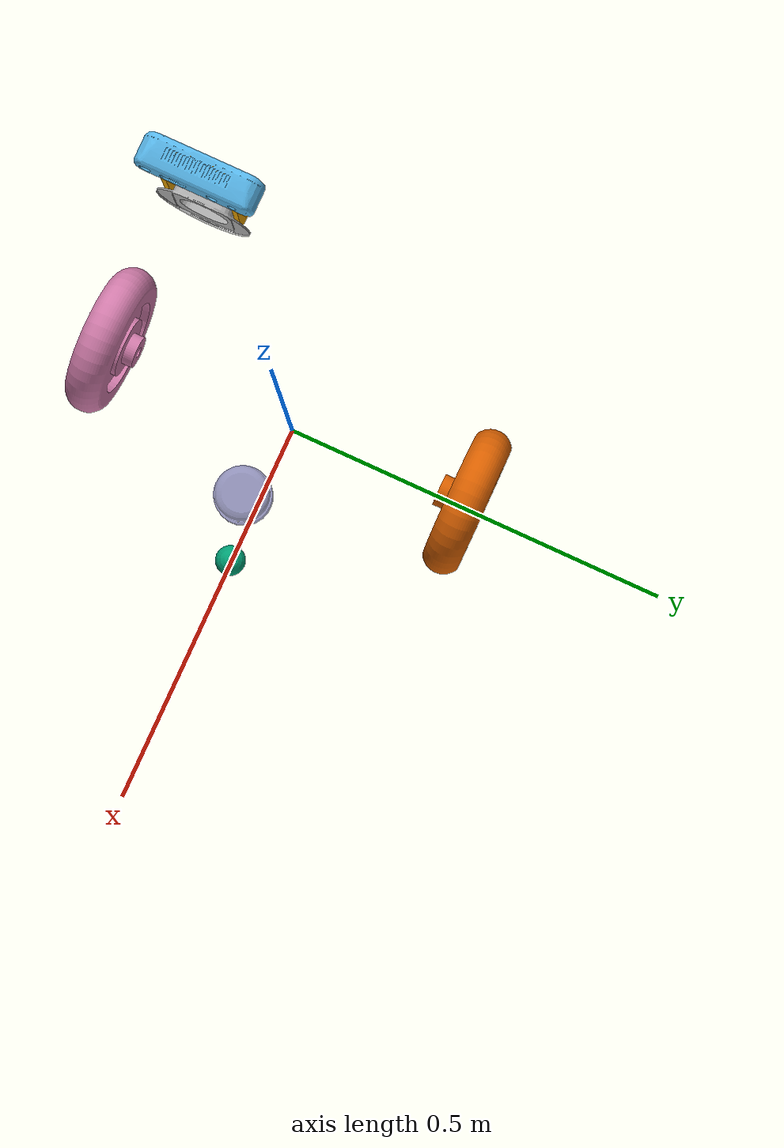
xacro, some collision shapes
<?xml version="1.0"?>
<robot xmlns:controller="http://playerstage.sourceforge.net/gazebo/xmlschema/#controller"
  xmlns:interface="http://playerstage.sourceforge.net/gazebo/xmlschema/#interface"
  xmlns:sensor="http://playerstage.sourceforge.net/gazebo/xmlschema/#sensor"
  xmlns:xacro="http://ros.org/wiki/xacro"
  name="sick_tim">

  <xacro:include filename="$(find robot_simulation)/urdf/sick_tim.urdf.xacro" />

  <!-- Choose your laser -->
  <xacro:rplidarA2 name="laser" ros_topic="scan"   />

  <xacro:include filename="$(find robot_simulation)/urdf/materials.xacro" />
  <xacro:include filename="$(find robot_simulation)/urdf/xbot-u.urdf.xacro" />
  <xacro:xbot2_base/>

</robot>

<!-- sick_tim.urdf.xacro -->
<robot xmlns:controller="http://playerstage.sourceforge.net/gazebo/xmlschema/#controller"
  xmlns:interface="http://playerstage.sourceforge.net/gazebo/xmlschema/#interface"
  xmlns:sensor="http://playerstage.sourceforge.net/gazebo/xmlschema/#sensor"
  xmlns:xacro="http://ros.org/wiki/xacro">

  <xacro:macro name="rplidarA2" params="name ros_topic">
    <xacro:sick_tim name="${name}" ros_topic="${ros_topic}"
      length="0.06" width="0.06" height="0.079" mass="0.150" z_offset="0.05595"
      min_range="0.2" max_range="8.0"
      mesh="file://$(find robot_simulation)/models/meshes/rplidar.obj" />
  </xacro:macro>

  <xacro:macro name="sick_tim310" params="name ros_topic">
    <xacro:sick_tim name="${name}" ros_topic="${ros_topic}"
      length="0.06" width="0.06" height="0.079" mass="0.150" z_offset="0.05595"
      min_range="0.05" max_range="4.0"
      mesh="file://$(find robot_simulation)/models/meshes/sick_tim310.stl" />
  </xacro:macro>

  <xacro:macro name="sick_tim551" params="name ros_topic">
    <xacro:sick_tim name="${name}" ros_topic="${ros_topic}"
      length="0.06" width="0.06" height="0.086" mass="0.250" z_offset="0.06296"
      min_range="0.05" max_range="10.0"
      mesh="file://$(find robot_simulation)/models/meshes/sick_tim551.stl" />
  </xacro:macro>

  <xacro:macro name="sick_tim571" params="name ros_topic">
    <xacro:sick_tim name="${name}" ros_topic="${ros_topic}"
      length="0.06" width="0.06" height="0.086" mass="0.250" z_offset="0.02"
      min_range="0.05" max_range="25.0"
      mesh="file://$(find robot_simulation)/models/meshes/sick_tim571.stl" />
  </xacro:macro>

  <xacro:macro name="sick_tim" params="name ros_topic length width height mass z_offset min_range max_range mesh">
    <!-- z_offset: distance between base plate and laser center (= center of mesh) -->

    <joint name="${name}_joint" type="fixed">
      <parent link="${name}_mount_link" />
      <child link="${name}" />
      <origin rpy="0 0 0" xyz="0 0 ${z_offset}"/>
    </joint>

    <link name="${name}">
      <visual>
        <geometry>
          <mesh filename="${mesh}" />
        </geometry>
        <material name="lightblue">
          <color rgba=".5 .5 .7 .8" />
        </material>
      </visual>
      <collision>
        <geometry>
          <mesh filename="${mesh}" />
        </geometry>
      </collision>
      <inertial>
        <mass value="${mass}" />
        <origin xyz="0 0 -0.026" />
        <inertia ixx="${0.0833333 * mass * (width * width + height * height)}" ixy="0.0" ixz="0.0"
          iyy="${0.0833333 * mass * (length * length + height * height)}" iyz="0.0"
          izz="${0.0833333 * mass * (length * length + width * width)}" />
      </inertial>
    </link>
      <xacro:sick_tim_laser_gazebo_v0 name="${name}" link="${name}" ros_topic="${ros_topic}"
      update_rate="15.0" min_angle="-2.357" max_angle="2.357" min_range="${min_range}" max_range="${max_range}"/>
      <!--update_rate=15.0-->
  </xacro:macro>

  <xacro:macro name="sick_tim_laser_gazebo_v0" params="name link ros_topic update_rate min_angle max_angle min_range max_range">
    <gazebo reference="${link}">
      <sensor type="gpu_lidar" name="${name}">
        <pose>0 0 0 0 0 0</pose>
        <visualize>true</visualize>
        <update_rate>20.0</update_rate>
        <topic>${ros_topic}</topic>
        <gz_frame_id>${link}</gz_frame_id>
        <always_on>true</always_on>
        <lidar>
          <scan>
            <horizontal>
              <samples>810</samples>
              <resolution>1.000000</resolution>
              <min_angle>-1.570796</min_angle>
              <max_angle>1.570796</max_angle>
            </horizontal>
          </scan>
          <range>
            <min>0.10</min>
            <max>10.0</max>
            <resolution>0.01</resolution>
          </range>
          <noise>
            <type>gaussian</type>
            <mean>0.0</mean>
            <stddev>0.01</stddev>
          </noise>
        </lidar>
      </sensor>
    </gazebo>
  </xacro:macro>
</robot>

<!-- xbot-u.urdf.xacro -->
<robot xmlns:controller="http://playerstage.sourceforge.net/gazebo/xmlschema/#controller"
  xmlns:interface="http://playerstage.sourceforge.net/gazebo/xmlschema/#interface"
  xmlns:sensor="http://playerstage.sourceforge.net/gazebo/xmlschema/#sensor"
  xmlns:xacro="http://ros.org/wiki/xacro">

  <xacro:macro name="xbot2_base">
  <link name="base_footprint"/>
  <joint name="base_footprint_to_base" type="fixed">
    <axis rpy="0 0 0" xyz="0 0 0"/>
    <parent link="base_footprint"/>
    <child link="base_link"/>
    <origin rpy="0 0 0" xyz="0 0 0"/>
  </joint>

  <link name="base_link">
    <inertial>
      <origin rpy="0 0 0" xyz="-0.015 0.0 0.0014" />
      <mass value="35" />
      <inertia ixx="0.6125" ixy="0.00495" ixz="0.0031" iyy="0.6426" iyz="-0.0017" izz="0.494" />
    </inertial>
    <visual>
      <origin xyz="0 0 0" rpy="0 0 0" />
      <geometry>
        <mesh filename="file://$(find robot_simulation)/models/meshes/base_link.obj" />
      </geometry>
    </visual>

    <collision name="front_omniwheel">
      <origin xyz="0.18 0 0.02" rpy="0 0 0" />
      <geometry>
        <sphere radius="0.019"/>
      </geometry>
    </collision>
    <collision name="back_omniwheel">
      <origin xyz="-0.18 0 0.02" rpy="0 0 0" />
      <geometry>
        <sphere radius="0.019"/>
      </geometry>
    </collision>
    <collision name="collision1">
      <origin xyz="0.0 0 0.135" rpy="0 0 0" />
      <geometry>
        <cylinder length="0.15" radius="0.25"/>
      </geometry>
    </collision>
    <collision name="collision2">
      <origin xyz="0.03 0 0.25" rpy="0 0 0" />
      <geometry>
        <cylinder length="0.08" radius="0.045"/>
      </geometry>
    </collision>
    <collision name="collision3">
      <origin xyz="0 0 0.68" rpy="0 0 0" />
      <geometry>
        <cylinder length="0.8" radius="0.08"/>
      </geometry>
    </collision>
    <collision name="collision4">
      <origin xyz="0 0 1.135" rpy="0 0 0" />
      <geometry>
        <box size="0.04 0.17 0.09"/>
      </geometry>
    </collision>
  </link>

  <link name="laser_mount_link"/>
  <joint name="base_to_laser" type="fixed">
    <axis rpy="0 0 0" xyz="0 0 0"/>
    <parent link="base_link"/>
    <child link="laser_mount_link"/>
    <origin rpy="0 0 0" xyz=".114 0 .17"/>
  </joint>

  <link name="imu_link"/>

  <joint name="base_to_imu" type="fixed">
    <axis rpy="0 0 0" xyz="0 0 0"/>
    <parent link="base_link"/>
    <child link="imu_link"/>
    <origin rpy="0 0 0" xyz="0 0 .2"/>
  </joint>

  <link name="left_wheel">
    <collision name="collision">
      <origin xyz="0 0 0" rpy="1.57079632 0 0"/>
      <geometry>
        <cylinder radius="0.095" length="0.05"/>
      </geometry>
    </collision>
    <visual name="left_wheel_visual">
      <origin xyz="0 0 0" rpy="0 0 -1.57079632"/>
      <geometry>
        <mesh filename="file://$(find robot_simulation)/models/meshes/wheel.obj" />
      </geometry>
    </visual>
    <inertial>
      <origin rpy="0 0 0" xyz="0 0 0" />
      <mass value="4.3542" />
      <inertia ixx="0.0045" ixy="0" ixz="0" iyy="0.005" iyz="0" izz="0.0045" />
    </inertial>
  </link>

  <joint type="continuous" name="left_wheel_hinge">
    <axis xyz="0 1 0" rpy="0 0 0"/>
    <origin xyz="0 0.23 .095" rpy="0 0 0"/>
    <parent link="base_link"/>
    <child link="left_wheel"/>
    <limit effort="6" velocity="5.0"/>
    <joint_properties damping="0.0" friction="0.0"/>
  </joint>

  <link name="right_wheel">
    <collision name="collision">
      <origin xyz="0 0 0" rpy="-1.57079632  0 0"/>
      <geometry>
        <cylinder radius="0.095" length="0.05"/>
      </geometry>
    </collision>
    <visual name="right_wheel_visual">
      <origin xyz="0 0 0" rpy="0 0 1.57079632"/>
      <geometry>
        <mesh filename="file://$(find robot_simulation)/models/meshes/wheel.obj" />
      </geometry>
    </visual>
    <inertial>
      <origin rpy="0 0 0" xyz="0 0 0" />
      <mass value="4.3542" />
      <inertia ixx="0.0045" ixy="0" ixz="0" iyy="0.005" iyz="0" izz="0.0045" />
    </inertial>
  </link>

  <joint type="continuous" name="right_wheel_hinge">
    <axis xyz="0 1 0" rpy="0 0 0"/>
    <origin xyz="0 -0.23 .095" rpy="0 0 0"/>
    <parent link="base_link"/>
    <child link="right_wheel"/>
    <limit effort="6" velocity="5.0"/>
    <joint_properties damping="0.0" friction="0.0"/>
  </joint>

  <link name="yaw_platform">
    <inertial>
      <mass value="1e-5" />
      <origin xyz="0 0 0" rpy="0 0 0"/>
      <inertia ixx="1e-6" ixy="0" ixz="0" iyy="1e-6" iyz="0" izz="1e-6" />
    </inertial>
    <visual>
      <origin xyz="0 0 0" rpy="0 0 1.57079632" />
      <geometry>
        <mesh filename="file://$(find robot_simulation)/models/meshes/yaw_platform.obj" />
      </geometry>
    </visual>
    <collision>
      <origin xyz="0 0 0" rpy="0 0 1.57079632" />
      <geometry>
        <box size="0.1 0.1 0.1"/>
      </geometry>
    </collision>
  </link>

  <joint name="base_to_yaw_platform" type="revolute">
    <axis xyz="0 0 1"/>
    <parent link="base_link"/>
    <child link="yaw_platform"/>
    <origin rpy="0 0 0" xyz="0 0 1.305"/>
    <limit effort="100" velocity="100" lower="-1.57" upper="1.57" />
    <dynamics damping="0.0" friction="10.0"/>
  </joint>

  <link name="pitch_platform">
    <inertial>
      <mass value="1e-5" />
      <origin xyz="0 0 0" rpy="0 0 0"/>
      <inertia ixx="1e-6" ixy="0" ixz="0" iyy="1e-6" iyz="0" izz="1e-6" />
    </inertial>
    <visual>
      <origin xyz="0 0 0" rpy="0 0 0" />
      <geometry>
        <mesh filename="file://$(find robot_simulation)/models/meshes/pitch_platform.obj" />
      </geometry>
    </visual>
    <collision>
      <origin xyz="0 0 0" rpy="0 0 0" />
      <geometry>
        <box size="0.1 0.1 0.1"/>
      </geometry>
    </collision>
  </link>

  <joint name="yaw_to_pitch_platform" type="revolute">
    <axis xyz="0 1 0"/>
    <parent link="yaw_platform"/>
    <child link="pitch_platform"/>
    <origin rpy="0 0 0" xyz="0 0 0"/>
    <limit effort="100" velocity="100" lower="-1.57" upper="1.57" />
    <dynamics damping="0.0" friction="10.0"/>
  </joint>

  <!-- Camera -->
  <link name="camera_link">
    <collision>
      <origin xyz="0 0 0" rpy="0 0 0"/>
      <geometry>
        <box size="0.1 0.1 0.1"/>
      </geometry>
    </collision>
    <visual>
      <origin xyz="0 0 0" rpy="0 0 0"/>
      <geometry>
        <mesh filename="file://$(find robot_simulation)/models/meshes/realsense.obj" />
      </geometry>
    </visual>
    <inertial>
      <mass value="1e-5" />
      <origin xyz="0 0 0" rpy="0 0 0"/>
      <inertia ixx="1e-6" ixy="0" ixz="0" iyy="1e-6" iyz="0" izz="1e-6" />
    </inertial>
  </link>

  <joint name="camera_joint" type="fixed">
    <axis xyz="0 1 0" />
    <origin xyz="-0.005 0 .06" rpy="0 0 0"/>
    <parent link="pitch_platform"/>
    <child link="camera_link"/>
  </joint>

  <!-- generate an optical frame http://www.ros.org/reps/rep-0103.html#suffix-frames
      so that ros and opencv can operate on the camera frame correctly -->
  <joint name="camera_optical_joint" type="fixed">
    <!-- these values have to be these values otherwise the gazebo camera image
        won't be aligned properly with the frame it is supposedly originating from -->
    <origin xyz="0 0 0" rpy="-1.5708 0 -1.5708"/>
    <parent link="camera_link"/>
    <child link="camera_link_optical"/>
  </joint>

  <link name="camera_link_optical">
  </link>

  <transmission name="tran1">
    <type>transmission_interface/SimpleTransmission</type>
    <joint name="base_to_yaw_platform">
      <hardwareInterface>EffortJointInterface</hardwareInterface>
    </joint>
    <actuator name="yaw_motor">
      <hardwareInterface>EffortJointInterface</hardwareInterface>
      <mechanicalReduction>1</mechanicalReduction>
    </actuator>
  </transmission>

  <transmission name="tran2">
    <type>transmission_interface/SimpleTransmission</type>
    <joint name="yaw_to_pitch_platform">
      <hardwareInterface>EffortJointInterface</hardwareInterface>
    </joint>
    <actuator name="pitch_motor">
      <hardwareInterface>EffortJointInterface</hardwareInterface>
      <mechanicalReduction>1</mechanicalReduction>
    </actuator>
  </transmission>

   <ros2_control name="GazeboSimSystem" type="system">
    <hardware>
      <plugin>gz_ros2_control/GazeboSimSystem</plugin>
    </hardware>
    <joint name="base_to_yaw_platform">
      <command_interface name="effort"/>
      <state_interface name="effort"/>
    </joint>
    <joint name="yaw_to_pitch_platform">
      <command_interface name="effort"/>
      <state_interface name="effort"/>
    </joint>
  </ros2_control>

  <gazebo>
    <plugin filename="libgz_ros2_control-system" name="gz_ros2_control::GazeboSimROS2ControlPlugin">
      <parameters>$(find robot_simulation)/param/xbot-u_control.yaml</parameters>
      <robot_param>robot_description</robot_param>
      <robot_param_node>robot_state_publisher</robot_param_node>
      <controller_manager_prefix_node_name>controller_manager</controller_manager_prefix_node_name>
    </plugin>
  </gazebo>

  <gazebo reference="imu_link">
    <sensor name="imu_sensor" type="imu">
      <always_on>true</always_on>
      <update_rate>100</update_rate>
      <visualize>true</visualize>
      <topic>imu</topic>
      <imu>
        <angular_velocity>
            <x>
              <noise type="gaussian">
                <mean>0.0</mean>
                <stddev>2e-4</stddev>
              </noise>
            </x>
            <y>
              <noise type="gaussian">
                <mean>0.0</mean>
                <stddev>2e-4</stddev>
              </noise>
            </y>
            <z>
              <noise type="gaussian">
                <mean>0.0</mean>
                <stddev>2e-4</stddev>
              </noise>
            </z>
          </angular_velocity>
          <linear_acceleration>
            <x>
              <noise type="gaussian">
                <mean>0.0</mean>
                <stddev>1.7e-2</stddev>
              </noise>
            </x>
            <y>
              <noise type="gaussian">
                <mean>0.0</mean>
                <stddev>1.7e-2</stddev>
              </noise>
            </y>
            <z>
              <noise type="gaussian">
                <mean>0.0</mean>
                <stddev>1.7e-2</stddev>
              </noise>
            </z>
          </linear_acceleration>
      </imu>
    </sensor>
  </gazebo>

  <gazebo reference="camera_link">
    <sensor type="rgbd_camera" name="camera_D415_point">
      <updateRate>30.0</updateRate>
      <alwaysOn>true</alwaysOn>
      <visualize>true</visualize>
      <topic>camera/depth</topic>
      <gz_frame_id>camera_link</gz_frame_id>
      <camera name="head">
        <horizontal_fov>1.05</horizontal_fov>
        <image>
          <width>1280</width>
          <height>720</height>
          <format>R8G8B8</format>
        </image>
        <clip>
          <near>0.1</near>
          <far>10.0</far>
        </clip>
        <noise>
          <type>gaussian</type>
          <mean>0.0</mean>
          <stddev>0.005</stddev>
        </noise>
        <baseline>0.1</baseline>
        <distortion_k1>0.0</distortion_k1>
        <distortion_k2>0.0</distortion_k2>
        <distortion_k3>0.0</distortion_k3>
        <distortion_t1>0.0</distortion_t1>
        <distortion_t2>0.0</distortion_t2>
        <pointCloudCutoff>0.05</pointCloudCutoff>
        <rangeMax>4.0</rangeMax>
      </camera>
    </sensor>
  </gazebo>

  <gazebo>
    <plugin filename="gz-sim-diff-drive-system" name="gz::sim::systems::DiffDrive">
        <odom_topic>odom</odom_topic>
        <frame_id>odom</frame_id>
        <topic>cmd_vel</topic>
        <alwaysOn>true</alwaysOn>
        <odom_publisher_frequency>20</odom_publisher_frequency>
        <left_joint>left_wheel_hinge</left_joint>
        <right_joint>right_wheel_hinge</right_joint>
        <wheel_separation>0.46</wheel_separation>
        <wheel_radius>0.19</wheel_radius>
        <tf_topic>/tf_diff</tf_topic>
        <child_frame_id>base_footprint</child_frame_id>
    </plugin>
  </gazebo>

  <gazebo reference="base_link">
    <mu>0</mu>
    <mu2>0</mu2>
    <kp>100000000.0</kp>
    <kd>10000.0</kd>
  </gazebo>

  <gazebo reference="laser">
  </gazebo>

  <gazebo reference="right_wheel">
    <mu>10</mu>
    <mu2>10</mu2>
    <kp>100.0</kp>
    <kd>10.0</kd>
  </gazebo>

  <gazebo reference="left_wheel">
    <mu>10</mu>
    <mu2>10</mu2>
    <kp>100.0</kp>
    <kd>10.0</kd>
  </gazebo>

  <gazebo reference="yaw_platform">
    <mu>.5</mu>
    <mu2>.5</mu2>
  </gazebo>

  <gazebo reference="pitch_platform">
    <mu>.5</mu>
    <mu2>.5</mu2>
  </gazebo>

  <gazebo>
    <plugin filename="gz-sim-joint-state-publisher-system" name="gz::sim::systems::JointStatePublisher">
        <topic>joint_states</topic>
        <joint_name>left_wheel_hinge</joint_name>
        <joint_name>right_wheel_hinge</joint_name>
        <joint_name>base_to_yaw_platform</joint_name>
        <joint_name>yaw_to_pitch_platform</joint_name>
    </plugin>
  </gazebo>

  </xacro:macro>
</robot>
